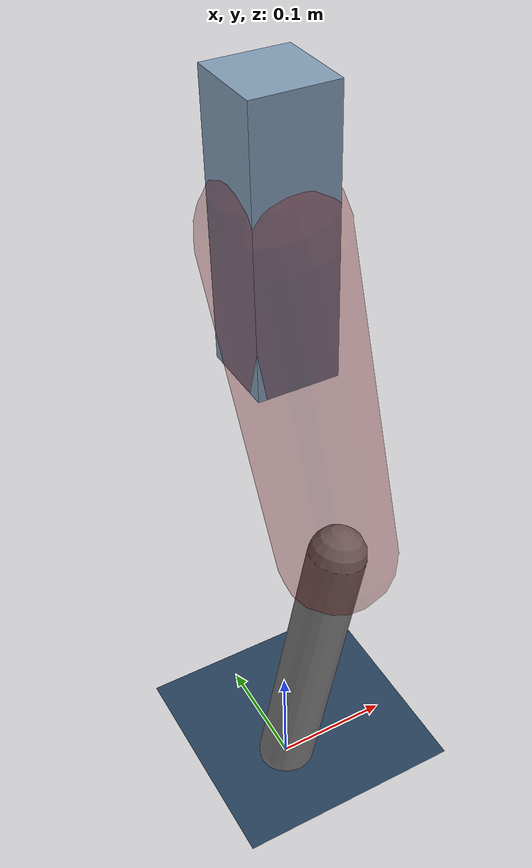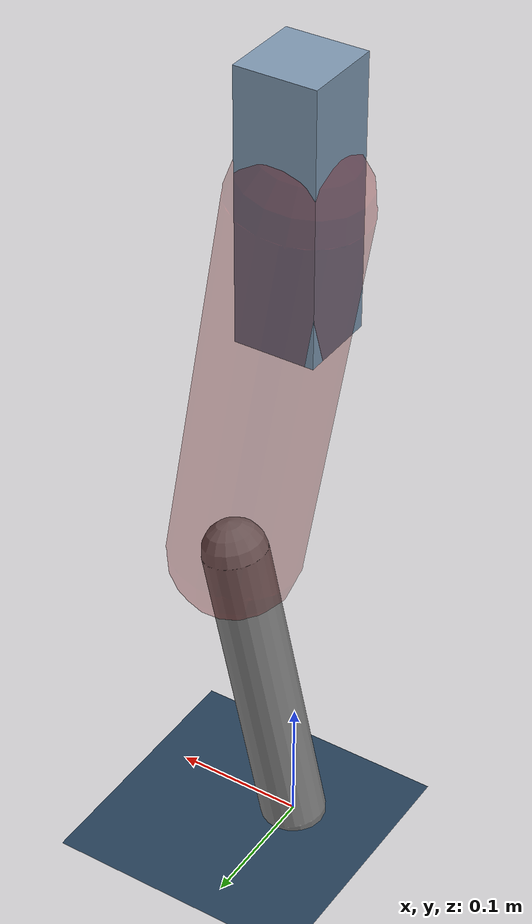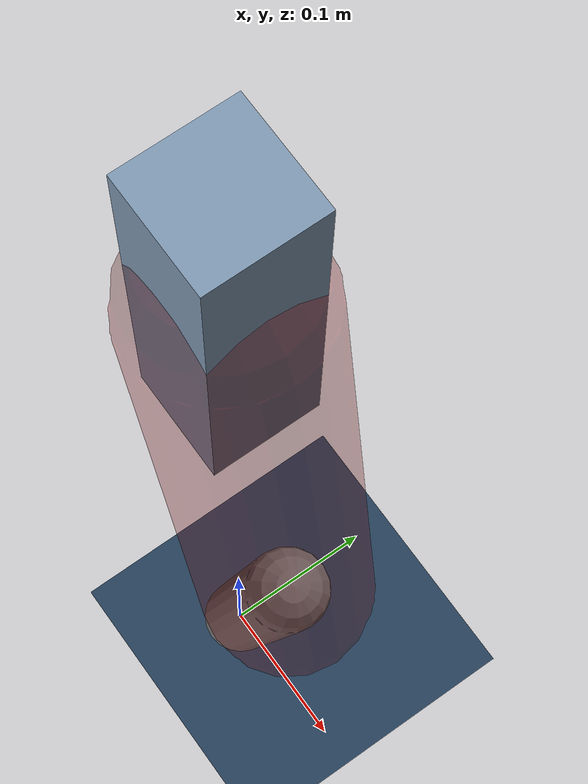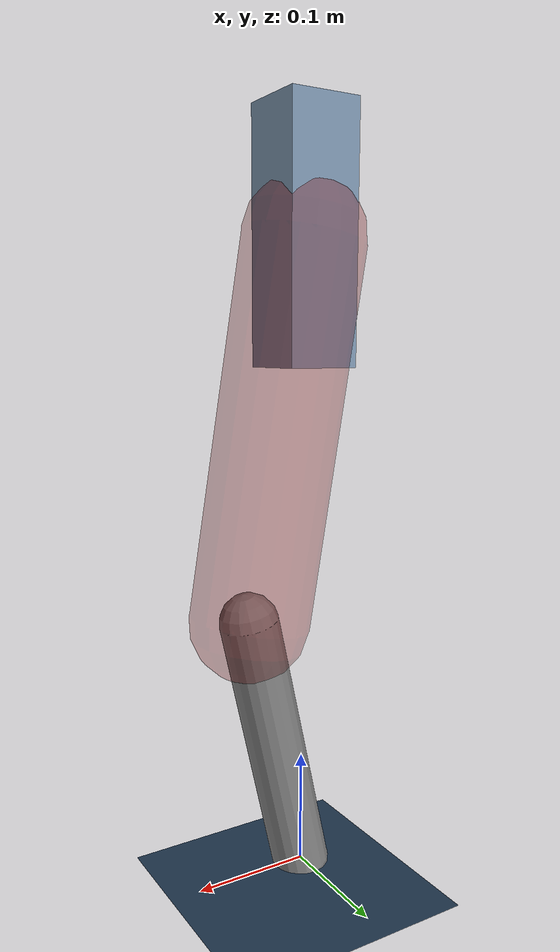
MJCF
<mujoco model="Hopper2D">
	<compiler inertiafromgeom="true" angle="radian" />
	<option timestep="0.001" integrator="implicit" cone="elliptic" solver="Newton" tolerance="1e-10" />

	<default>
		<geom contype="1" conaffinity="1" condim="3" friction="2 0.005 0.0001" solref="0.005 1" />
		<joint limited="true" damping="0.1" />
	</default>

	<asset>
		<texture name="skybox" type="skybox" builtin="gradient" rgb1=".4 .6 .8" rgb2="0 0 0" width="800" height="800" />
		<texture name="grid" type="2d" builtin="checker" rgb1=".1 .2 .3" rgb2=".2 .3 .4" width="300" height="300" mark="edge" markrgb=".2 .3 .4" />
		<material name="ground" texture="grid" texrepeat="1 1" texuniform="true" reflectance="0.1" />
		<material name="leg" rgba="0.5 0.6 0.7 1" />
	</asset>

	<worldbody>

		<geom name="floor" type="plane" size="5 5 0.25" material="ground" />

		<light directional="false" diffuse="0.8 0.8 0.8" specular="0.3 0.3 0.3" pos="0 0 2" dir="0 0 -1" />
		<light mode="targetbodycom" target="base" directional="false" diffuse="0.8 0.8 0.8" specular="0.3 0.3 0.3" pos="0 0 2" dir="0 0 -1" />

		<camera name="fixed" pos="0 -2 1" xyaxes="1 0 0 0 0 1" />
		<camera name="tracking" mode="trackcom" pos="0 -3 1" />

		<body name="root" pos="0 0 0.5367060590350949">
			<joint name="slide_x" type="slide" axis="1 0 0" range="-100 100" />
			<joint name="slide_z" type="slide" axis="0 0 1" range="0 10" />

			<body name="base" pos="0 0 0">
				<geom name="torso" type="box" size="0.03 0.03 0.1" mass="2.466" material="leg" />

				<body name="link1" pos="0 0 0" euler="0 1.4038942911417558 0">
					<joint type="hinge" axis="0 -1 0" pos="0 0 0" name="hinge1" limited="true" range="-3.14 3.14" stiffness="0" damping="0.1" />
					<geom name="thigh" type="capsule" fromto="0 0 0 0.3102913218977287 0 0" size="0.05" rgba="0.5 0 0 0.3" mass="1.0166865691238673" />

					<body name="link2" pos="0.3102913218977287 0 0" euler="0 0.38670894946555234 0">
						<joint type="hinge" axis="0 -1 0" pos="0 0 0" name="hinge2" limited="true" range="-3.14 3.14" stiffness="0" damping="0.1" />
						<geom name="shank" type="capsule" fromto="0 0 0 0.23641473713736633 0 0" size="0.025" mass="0.43133178970989305" />

					</body>
				</body>
			</body>
		</body>
	</worldbody>

	<actuator>
		<motor name="torque1" joint="hinge1" ctrlrange="-79.71446099895441 79.71446099895441" ctrllimited="true" gear="1" />
		<motor name="torque2" joint="hinge2" ctrlrange="-106.12394443926539 106.12394443926539" ctrllimited="true" gear="1" />
	</actuator>
</mujoco>
